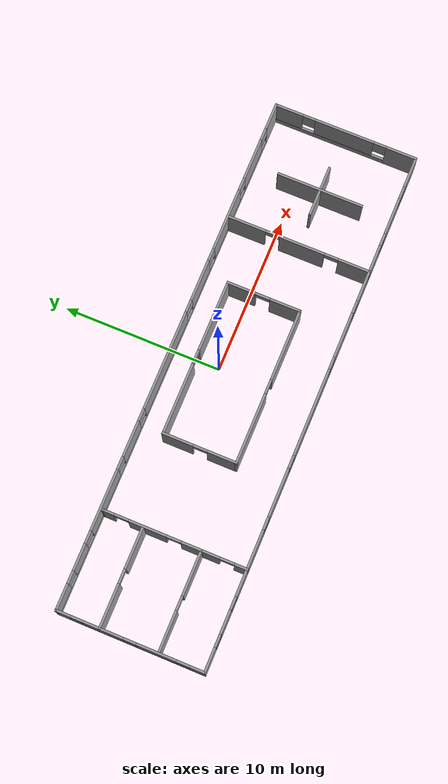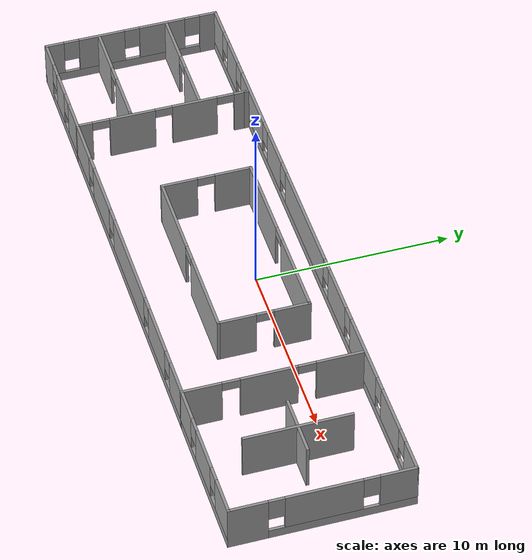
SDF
<?xml version='1.0'?>
<sdf version='1.6'>
  <model name='TakeTwo'>
    <pose frame=''>-0.429851 -1.63725 0 0 -0 0</pose>
    <link name='Wall_1'>
      <pose frame=''>1e-06 -4.55 0 0 -0 0</pose>
      <visual name='Wall_1_Visual_0'>
        <pose frame=''>-15.8307 0 1.25 0 -0 0</pose>
        <geometry>
          <box>
            <size>1.58863 0.15 2.5</size>
          </box>
        </geometry>
        <material>
          <script>
            <uri>file://media/materials/scripts/gazebo.material</uri>
            <name>Gazebo/Grey</name>
          </script>
          <ambient>1 1 1 1</ambient>
        </material>
        <meta>
          <layer>0</layer>
        </meta>
      </visual>
      <collision name='Wall_1_Collision_0'>
        <geometry>
          <box>
            <size>1.58863 0.15 2.5</size>
          </box>
        </geometry>
        <pose frame=''>-15.8307 0 1.25 0 -0 0</pose>
      </collision>
      <visual name='Wall_1_Visual_1'>
        <pose frame=''>0.794313 0 0.25 0 -0 0</pose>
        <geometry>
          <box>
            <size>31.6614 0.15 0.5</size>
          </box>
        </geometry>
        <material>
          <script>
            <uri>file://media/materials/scripts/gazebo.material</uri>
            <name>Gazebo/Grey</name>
          </script>
          <ambient>1 1 1 1</ambient>
        </material>
        <meta>
          <layer>0</layer>
        </meta>
      </visual>
      <collision name='Wall_1_Collision_1'>
        <geometry>
          <box>
            <size>31.6614 0.15 0.5</size>
          </box>
        </geometry>
        <pose frame=''>0.794313 0 0.25 0 -0 0</pose>
      </collision>
      <visual name='Wall_1_Visual_2'>
        <pose frame=''>-13.4926 0 1.5 0 -0 0</pose>
        <geometry>
          <box>
            <size>1.48762 0.15 2</size>
          </box>
        </geometry>
        <material>
          <script>
            <uri>file://media/materials/scripts/gazebo.material</uri>
            <name>Gazebo/Grey</name>
          </script>
          <ambient>1 1 1 1</ambient>
        </material>
        <meta>
          <layer>0</layer>
        </meta>
      </visual>
      <collision name='Wall_1_Collision_2'>
        <geometry>
          <box>
            <size>1.48762 0.15 2</size>
          </box>
        </geometry>
        <pose frame=''>-13.4926 0 1.5 0 -0 0</pose>
      </collision>
      <visual name='Wall_1_Visual_3'>
        <pose frame=''>-9.88824 0 1.5 0 -0 0</pose>
        <geometry>
          <box>
            <size>4.12104 0.15 2</size>
          </box>
        </geometry>
        <material>
          <script>
            <uri>file://media/materials/scripts/gazebo.material</uri>
            <name>Gazebo/Grey</name>
          </script>
          <ambient>1 1 1 1</ambient>
        </material>
        <meta>
          <layer>0</layer>
        </meta>
      </visual>
      <collision name='Wall_1_Collision_3'>
        <geometry>
          <box>
            <size>4.12104 0.15 2</size>
          </box>
        </geometry>
        <pose frame=''>-9.88824 0 1.5 0 -0 0</pose>
      </collision>
      <visual name='Wall_1_Visual_4'>
        <pose frame=''>-5.4992 0 1.5 0 -0 0</pose>
        <geometry>
          <box>
            <size>3.05703 0.15 2</size>
          </box>
        </geometry>
        <material>
          <script>
            <uri>file://media/materials/scripts/gazebo.material</uri>
            <name>Gazebo/Grey</name>
          </script>
          <ambient>1 1 1 1</ambient>
        </material>
        <meta>
          <layer>0</layer>
        </meta>
      </visual>
      <collision name='Wall_1_Collision_4'>
        <geometry>
          <box>
            <size>3.05703 0.15 2</size>
          </box>
        </geometry>
        <pose frame=''>-5.4992 0 1.5 0 -0 0</pose>
      </collision>
      <visual name='Wall_1_Visual_5'>
        <pose frame=''>-0.391967 0 1.5 0 -0 0</pose>
        <geometry>
          <box>
            <size>5.55745 0.15 2</size>
          </box>
        </geometry>
        <material>
          <script>
            <uri>file://media/materials/scripts/gazebo.material</uri>
            <name>Gazebo/Grey</name>
          </script>
          <ambient>1 1 1 1</ambient>
        </material>
        <meta>
          <layer>0</layer>
        </meta>
      </visual>
      <collision name='Wall_1_Collision_5'>
        <geometry>
          <box>
            <size>5.55745 0.15 2</size>
          </box>
        </geometry>
        <pose frame=''>-0.391967 0 1.5 0 -0 0</pose>
      </collision>
      <visual name='Wall_1_Visual_6'>
        <pose frame=''>4.63547 0 1.5 0 -0 0</pose>
        <geometry>
          <box>
            <size>2.89743 0.15 2</size>
          </box>
        </geometry>
        <material>
          <script>
            <uri>file://media/materials/scripts/gazebo.material</uri>
            <name>Gazebo/Grey</name>
          </script>
          <ambient>1 1 1 1</ambient>
        </material>
        <meta>
          <layer>0</layer>
        </meta>
      </visual>
      <collision name='Wall_1_Collision_6'>
        <geometry>
          <box>
            <size>2.89743 0.15 2</size>
          </box>
        </geometry>
        <pose frame=''>4.63547 0 1.5 0 -0 0</pose>
      </collision>
      <visual name='Wall_1_Visual_7'>
        <pose frame=''>8.7452 0 1.5 0 -0 0</pose>
        <geometry>
          <box>
            <size>3.72203 0.15 2</size>
          </box>
        </geometry>
        <material>
          <script>
            <uri>file://media/materials/scripts/gazebo.material</uri>
            <name>Gazebo/Grey</name>
          </script>
          <ambient>1 1 1 1</ambient>
        </material>
        <meta>
          <layer>0</layer>
        </meta>
      </visual>
      <collision name='Wall_1_Collision_7'>
        <geometry>
          <box>
            <size>3.72203 0.15 2</size>
          </box>
        </geometry>
        <pose frame=''>8.7452 0 1.5 0 -0 0</pose>
      </collision>
      <visual name='Wall_1_Visual_8'>
        <pose frame=''>12.6022 0 1.5 0 -0 0</pose>
        <geometry>
          <box>
            <size>2.39202 0.15 2</size>
          </box>
        </geometry>
        <material>
          <script>
            <uri>file://media/materials/scripts/gazebo.material</uri>
            <name>Gazebo/Grey</name>
          </script>
          <ambient>1 1 1 1</ambient>
        </material>
        <meta>
          <layer>0</layer>
        </meta>
      </visual>
      <collision name='Wall_1_Collision_8'>
        <geometry>
          <box>
            <size>2.39202 0.15 2</size>
          </box>
        </geometry>
        <pose frame=''>12.6022 0 1.5 0 -0 0</pose>
      </collision>
      <visual name='Wall_1_Visual_9'>
        <pose frame=''>15.6116 0 1.5 0 -0 0</pose>
        <geometry>
          <box>
            <size>2.02676 0.15 2</size>
          </box>
        </geometry>
        <material>
          <script>
            <uri>file://media/materials/scripts/gazebo.material</uri>
            <name>Gazebo/Grey</name>
          </script>
          <ambient>1 1 1 1</ambient>
        </material>
        <meta>
          <layer>0</layer>
        </meta>
      </visual>
      <collision name='Wall_1_Collision_9'>
        <geometry>
          <box>
            <size>2.02676 0.15 2</size>
          </box>
        </geometry>
        <pose frame=''>15.6116 0 1.5 0 -0 0</pose>
      </collision>
      <visual name='Wall_1_Visual_10'>
        <pose frame=''>-14.6364 0 1.9 0 -0 0</pose>
        <geometry>
          <box>
            <size>0.8 0.15 1.2</size>
          </box>
        </geometry>
        <material>
          <script>
            <uri>file://media/materials/scripts/gazebo.material</uri>
            <name>Gazebo/Grey</name>
          </script>
          <ambient>1 1 1 1</ambient>
        </material>
        <meta>
          <layer>0</layer>
        </meta>
      </visual>
      <collision name='Wall_1_Collision_10'>
        <geometry>
          <box>
            <size>0.8 0.15 1.2</size>
          </box>
        </geometry>
        <pose frame=''>-14.6364 0 1.9 0 -0 0</pose>
      </collision>
      <visual name='Wall_1_Visual_11'>
        <pose frame=''>-12.3488 0 1.9 0 -0 0</pose>
        <geometry>
          <box>
            <size>0.8 0.15 1.2</size>
          </box>
        </geometry>
        <material>
          <script>
            <uri>file://media/materials/scripts/gazebo.material</uri>
            <name>Gazebo/Grey</name>
          </script>
          <ambient>1 1 1 1</ambient>
        </material>
        <meta>
          <layer>0</layer>
        </meta>
      </visual>
      <collision name='Wall_1_Collision_11'>
        <geometry>
          <box>
            <size>0.8 0.15 1.2</size>
          </box>
        </geometry>
        <pose frame=''>-12.3488 0 1.9 0 -0 0</pose>
      </collision>
      <visual name='Wall_1_Visual_12'>
        <pose frame=''>-7.42772 0 1.9 0 -0 0</pose>
        <geometry>
          <box>
            <size>0.8 0.15 1.2</size>
          </box>
        </geometry>
        <material>
          <script>
            <uri>file://media/materials/scripts/gazebo.material</uri>
            <name>Gazebo/Grey</name>
          </script>
          <ambient>1 1 1 1</ambient>
        </material>
        <meta>
          <layer>0</layer>
        </meta>
      </visual>
      <collision name='Wall_1_Collision_12'>
        <geometry>
          <box>
            <size>0.8 0.15 1.2</size>
          </box>
        </geometry>
        <pose frame=''>-7.42772 0 1.9 0 -0 0</pose>
      </collision>
      <visual name='Wall_1_Visual_13'>
        <pose frame=''>-3.57069 0 1.9 0 -0 0</pose>
        <geometry>
          <box>
            <size>0.8 0.15 1.2</size>
          </box>
        </geometry>
        <material>
          <script>
            <uri>file://media/materials/scripts/gazebo.material</uri>
            <name>Gazebo/Grey</name>
          </script>
          <ambient>1 1 1 1</ambient>
        </material>
        <meta>
          <layer>0</layer>
        </meta>
      </visual>
      <collision name='Wall_1_Collision_13'>
        <geometry>
          <box>
            <size>0.8 0.15 1.2</size>
          </box>
        </geometry>
        <pose frame=''>-3.57069 0 1.9 0 -0 0</pose>
      </collision>
      <visual name='Wall_1_Visual_14'>
        <pose frame=''>2.78676 0 1.9 0 -0 0</pose>
        <geometry>
          <box>
            <size>0.8 0.15 1.2</size>
          </box>
        </geometry>
        <material>
          <script>
            <uri>file://media/materials/scripts/gazebo.material</uri>
            <name>Gazebo/Grey</name>
          </script>
          <ambient>1 1 1 1</ambient>
        </material>
        <meta>
          <layer>0</layer>
        </meta>
      </visual>
      <collision name='Wall_1_Collision_14'>
        <geometry>
          <box>
            <size>0.8 0.15 1.2</size>
          </box>
        </geometry>
        <pose frame=''>2.78676 0 1.9 0 -0 0</pose>
      </collision>
      <visual name='Wall_1_Visual_15'>
        <pose frame=''>6.48419 0 1.9 0 -0 0</pose>
        <geometry>
          <box>
            <size>0.8 0.15 1.2</size>
          </box>
        </geometry>
        <material>
          <script>
            <uri>file://media/materials/scripts/gazebo.material</uri>
            <name>Gazebo/Grey</name>
          </script>
          <ambient>1 1 1 1</ambient>
        </material>
        <meta>
          <layer>0</layer>
        </meta>
      </visual>
      <collision name='Wall_1_Collision_15'>
        <geometry>
          <box>
            <size>0.8 0.15 1.2</size>
          </box>
        </geometry>
        <pose frame=''>6.48419 0 1.9 0 -0 0</pose>
      </collision>
      <visual name='Wall_1_Visual_16'>
        <pose frame=''>11.0062 0 1.9 0 -0 0</pose>
        <geometry>
          <box>
            <size>0.8 0.15 1.2</size>
          </box>
        </geometry>
        <material>
          <script>
            <uri>file://media/materials/scripts/gazebo.material</uri>
            <name>Gazebo/Grey</name>
          </script>
          <ambient>1 1 1 1</ambient>
        </material>
        <meta>
          <layer>0</layer>
        </meta>
      </visual>
      <collision name='Wall_1_Collision_16'>
        <geometry>
          <box>
            <size>0.8 0.15 1.2</size>
          </box>
        </geometry>
        <pose frame=''>11.0062 0 1.9 0 -0 0</pose>
      </collision>
      <visual name='Wall_1_Visual_17'>
        <pose frame=''>14.1982 0 1.9 0 -0 0</pose>
        <geometry>
          <box>
            <size>0.8 0.15 1.2</size>
          </box>
        </geometry>
        <material>
          <script>
            <uri>file://media/materials/scripts/gazebo.material</uri>
            <name>Gazebo/Grey</name>
          </script>
          <ambient>1 1 1 1</ambient>
        </material>
        <meta>
          <layer>0</layer>
        </meta>
      </visual>
      <collision name='Wall_1_Collision_17'>
        <geometry>
          <box>
            <size>0.8 0.15 1.2</size>
          </box>
        </geometry>
        <pose frame=''>14.1982 0 1.9 0 -0 0</pose>
      </collision>
    </link>
    <link name='Wall_11'>
      <pose frame=''>-10.279 -0.125 0 0 -0 1.5708</pose>
      <visual name='Wall_11_Visual_0'>
        <pose frame=''>-4.07739 0 1.25 0 -0 0</pose>
        <geometry>
          <box>
            <size>0.845229 0.15 2.5</size>
          </box>
        </geometry>
        <material>
          <script>
            <uri>file://media/materials/scripts/gazebo.material</uri>
            <name>Gazebo/Grey</name>
          </script>
          <ambient>1 1 1 1</ambient>
        </material>
        <meta>
          <layer>0</layer>
        </meta>
      </visual>
      <collision name='Wall_11_Collision_0'>
        <geometry>
          <box>
            <size>0.845229 0.15 2.5</size>
          </box>
        </geometry>
        <pose frame=''>-4.07739 0 1.25 0 -0 0</pose>
      </collision>
      <visual name='Wall_11_Visual_1'>
        <pose frame=''>-1.55556 0 1.25 0 -0 0</pose>
        <geometry>
          <box>
            <size>2.39843 0.15 2.5</size>
          </box>
        </geometry>
        <material>
          <script>
            <uri>file://media/materials/scripts/gazebo.material</uri>
            <name>Gazebo/Grey</name>
          </script>
          <ambient>1 1 1 1</ambient>
        </material>
        <meta>
          <layer>0</layer>
        </meta>
      </visual>
      <collision name='Wall_11_Collision_1'>
        <geometry>
          <box>
            <size>2.39843 0.15 2.5</size>
          </box>
        </geometry>
        <pose frame=''>-1.55556 0 1.25 0 -0 0</pose>
      </collision>
      <visual name='Wall_11_Visual_2'>
        <pose frame=''>1.72957 0 1.25 0 -0 0</pose>
        <geometry>
          <box>
            <size>2.37182 0.15 2.5</size>
          </box>
        </geometry>
        <material>
          <script>
            <uri>file://media/materials/scripts/gazebo.material</uri>
            <name>Gazebo/Grey</name>
          </script>
          <ambient>1 1 1 1</ambient>
        </material>
        <meta>
          <layer>0</layer>
        </meta>
      </visual>
      <collision name='Wall_11_Collision_2'>
        <geometry>
          <box>
            <size>2.37182 0.15 2.5</size>
          </box>
        </geometry>
        <pose frame=''>1.72957 0 1.25 0 -0 0</pose>
      </collision>
      <visual name='Wall_11_Visual_3'>
        <pose frame=''>4.15774 0 1.25 0 -0 0</pose>
        <geometry>
          <box>
            <size>0.684522 0.15 2.5</size>
          </box>
        </geometry>
        <material>
          <script>
            <uri>file://media/materials/scripts/gazebo.material</uri>
            <name>Gazebo/Grey</name>
          </script>
          <ambient>1 1 1 1</ambient>
        </material>
        <meta>
          <layer>0</layer>
        </meta>
      </visual>
      <collision name='Wall_11_Collision_3'>
        <geometry>
          <box>
            <size>0.684522 0.15 2.5</size>
          </box>
        </geometry>
        <pose frame=''>4.15774 0 1.25 0 -0 0</pose>
      </collision>
      <visual name='Wall_11_Visual_4'>
        <pose frame=''>-3.20477 0 2.25 0 -0 0</pose>
        <geometry>
          <box>
            <size>0.9 0.15 0.5</size>
          </box>
        </geometry>
        <material>
          <script>
            <uri>file://media/materials/scripts/gazebo.material</uri>
            <name>Gazebo/Grey</name>
          </script>
          <ambient>1 1 1 1</ambient>
        </material>
        <meta>
          <layer>0</layer>
        </meta>
      </visual>
      <collision name='Wall_11_Collision_4'>
        <geometry>
          <box>
            <size>0.9 0.15 0.5</size>
          </box>
        </geometry>
        <pose frame=''>-3.20477 0 2.25 0 -0 0</pose>
      </collision>
      <visual name='Wall_11_Visual_5'>
        <pose frame=''>0.093653 0 2.25 0 -0 0</pose>
        <geometry>
          <box>
            <size>0.9 0.15 0.5</size>
          </box>
        </geometry>
        <material>
          <script>
            <uri>file://media/materials/scripts/gazebo.material</uri>
            <name>Gazebo/Grey</name>
          </script>
          <ambient>1 1 1 1</ambient>
        </material>
        <meta>
          <layer>0</layer>
        </meta>
      </visual>
      <collision name='Wall_11_Collision_5'>
        <geometry>
          <box>
            <size>0.9 0.15 0.5</size>
          </box>
        </geometry>
        <pose frame=''>0.093653 0 2.25 0 -0 0</pose>
      </collision>
      <visual name='Wall_11_Visual_6'>
        <pose frame=''>3.36548 0 2.25 0 -0 0</pose>
        <geometry>
          <box>
            <size>0.9 0.15 0.5</size>
          </box>
        </geometry>
        <material>
          <script>
            <uri>file://media/materials/scripts/gazebo.material</uri>
            <name>Gazebo/Grey</name>
          </script>
          <ambient>1 1 1 1</ambient>
        </material>
        <meta>
          <layer>0</layer>
        </meta>
      </visual>
      <collision name='Wall_11_Collision_6'>
        <geometry>
          <box>
            <size>0.9 0.15 0.5</size>
          </box>
        </geometry>
        <pose frame=''>3.36548 0 2.25 0 -0 0</pose>
      </collision>
    </link>
    <link name='Wall_12'>
      <collision name='Wall_12_Collision'>
        <geometry>
          <box>
            <size>0.25 0.15 2.5</size>
          </box>
        </geometry>
        <pose frame=''>0 0 1.25 0 -0 0</pose>
      </collision>
      <visual name='Wall_12_Visual'>
        <pose frame=''>0 0 1.25 0 -0 0</pose>
        <geometry>
          <box>
            <size>0.25 0.15 2.5</size>
          </box>
        </geometry>
        <material>
          <script>
            <uri>file://media/materials/scripts/gazebo.material</uri>
            <name>Gazebo/Grey</name>
          </script>
          <ambient>1 1 1 1</ambient>
        </material>
        <meta>
          <layer>0</layer>
        </meta>
      </visual>
      <pose frame=''>-10.279 4.35 0 0 -0 1.5708</pose>
    </link>
    <link name='Wall_14'>
      <pose frame=''>8.83989 0 0 0 -0 1.5708</pose>
      <visual name='Wall_14_Visual_0'>
        <pose frame=''>-3.60388 0 1.25 0 -0 0</pose>
        <geometry>
          <box>
            <size>2.04224 0.15 2.5</size>
          </box>
        </geometry>
        <material>
          <script>
            <uri>file://media/materials/scripts/gazebo.material</uri>
            <name>Gazebo/Grey</name>
          </script>
          <ambient>1 1 1 1</ambient>
        </material>
        <meta>
          <layer>0</layer>
        </meta>
      </visual>
      <collision name='Wall_14_Collision_0'>
        <geometry>
          <box>
            <size>2.04224 0.15 2.5</size>
          </box>
        </geometry>
        <pose frame=''>-3.60388 0 1.25 0 -0 0</pose>
      </collision>
      <visual name='Wall_14_Visual_1'>
        <pose frame=''>-0.244148 0 1.25 0 -0 0</pose>
        <geometry>
          <box>
            <size>2.87723 0.15 2.5</size>
          </box>
        </geometry>
        <material>
          <script>
            <uri>file://media/materials/scripts/gazebo.material</uri>
            <name>Gazebo/Grey</name>
          </script>
          <ambient>1 1 1 1</ambient>
        </material>
        <meta>
          <layer>0</layer>
        </meta>
      </visual>
      <collision name='Wall_14_Collision_1'>
        <geometry>
          <box>
            <size>2.87723 0.15 2.5</size>
          </box>
        </geometry>
        <pose frame=''>-0.244148 0 1.25 0 -0 0</pose>
      </collision>
      <visual name='Wall_14_Visual_2'>
        <pose frame=''>3.35973 0 1.25 0 -0 0</pose>
        <geometry>
          <box>
            <size>2.53053 0.15 2.5</size>
          </box>
        </geometry>
        <material>
          <script>
            <uri>file://media/materials/scripts/gazebo.material</uri>
            <name>Gazebo/Grey</name>
          </script>
          <ambient>1 1 1 1</ambient>
        </material>
        <meta>
          <layer>0</layer>
        </meta>
      </visual>
      <collision name='Wall_14_Collision_2'>
        <geometry>
          <box>
            <size>2.53053 0.15 2.5</size>
          </box>
        </geometry>
        <pose frame=''>3.35973 0 1.25 0 -0 0</pose>
      </collision>
      <visual name='Wall_14_Visual_3'>
        <pose frame=''>-2.13276 0 2.25 0 -0 0</pose>
        <geometry>
          <box>
            <size>0.9 0.15 0.5</size>
          </box>
        </geometry>
        <material>
          <script>
            <uri>file://media/materials/scripts/gazebo.material</uri>
            <name>Gazebo/Grey</name>
          </script>
          <ambient>1 1 1 1</ambient>
        </material>
        <meta>
          <layer>0</layer>
        </meta>
      </visual>
      <collision name='Wall_14_Collision_3'>
        <geometry>
          <box>
            <size>0.9 0.15 0.5</size>
          </box>
        </geometry>
        <pose frame=''>-2.13276 0 2.25 0 -0 0</pose>
      </collision>
      <visual name='Wall_14_Visual_4'>
        <pose frame=''>1.64447 0 2.25 0 -0 0</pose>
        <geometry>
          <box>
            <size>0.9 0.15 0.5</size>
          </box>
        </geometry>
        <material>
          <script>
            <uri>file://media/materials/scripts/gazebo.material</uri>
            <name>Gazebo/Grey</name>
          </script>
          <ambient>1 1 1 1</ambient>
        </material>
        <meta>
          <layer>0</layer>
        </meta>
      </visual>
      <collision name='Wall_14_Collision_4'>
        <geometry>
          <box>
            <size>0.9 0.15 0.5</size>
          </box>
        </geometry>
        <pose frame=''>1.64447 0 2.25 0 -0 0</pose>
      </collision>
    </link>
    <link name='Wall_16'>
      <pose frame=''>-13.4694 1.87395 0 0 -0 0</pose>
      <visual name='Wall_16_Visual_0'>
        <pose frame=''>-1.73258 0 1.25 0 -0 0</pose>
        <geometry>
          <box>
            <size>2.78485 0.15 2.5</size>
          </box>
        </geometry>
        <material>
          <script>
            <uri>file://media/materials/scripts/gazebo.material</uri>
            <name>Gazebo/Grey</name>
          </script>
          <ambient>1 1 1 1</ambient>
        </material>
        <meta>
          <layer>0</layer>
        </meta>
      </visual>
      <collision name='Wall_16_Collision_0'>
        <geometry>
          <box>
            <size>2.78485 0.15 2.5</size>
          </box>
        </geometry>
        <pose frame=''>-1.73258 0 1.25 0 -0 0</pose>
      </collision>
      <visual name='Wall_16_Visual_1'>
        <pose frame=''>1.84242 0 1.25 0 -0 0</pose>
        <geometry>
          <box>
            <size>2.56515 0.15 2.5</size>
          </box>
        </geometry>
        <material>
          <script>
            <uri>file://media/materials/scripts/gazebo.material</uri>
            <name>Gazebo/Grey</name>
          </script>
          <ambient>1 1 1 1</ambient>
        </material>
        <meta>
          <layer>0</layer>
        </meta>
      </visual>
      <collision name='Wall_16_Collision_1'>
        <geometry>
          <box>
            <size>2.56515 0.15 2.5</size>
          </box>
        </geometry>
        <pose frame=''>1.84242 0 1.25 0 -0 0</pose>
      </collision>
      <visual name='Wall_16_Visual_2'>
        <pose frame=''>0.109846 0 2.25 0 -0 0</pose>
        <geometry>
          <box>
            <size>0.9 0.15 0.5</size>
          </box>
        </geometry>
        <material>
          <script>
            <uri>file://media/materials/scripts/gazebo.material</uri>
            <name>Gazebo/Grey</name>
          </script>
          <ambient>1 1 1 1</ambient>
        </material>
        <meta>
          <layer>0</layer>
        </meta>
      </visual>
      <collision name='Wall_16_Collision_2'>
        <geometry>
          <box>
            <size>0.9 0.15 0.5</size>
          </box>
        </geometry>
        <pose frame=''>0.109846 0 2.25 0 -0 0</pose>
      </collision>
    </link>
    <link name='Wall_18'>
      <pose frame=''>-13.5 -1.7357 0 0 -0 0</pose>
      <visual name='Wall_18_Visual_0'>
        <pose frame=''>-1.79708 0 1.25 0 -0 0</pose>
        <geometry>
          <box>
            <size>2.65584 0.15 2.5</size>
          </box>
        </geometry>
        <material>
          <script>
            <uri>file://media/materials/scripts/gazebo.material</uri>
            <name>Gazebo/Grey</name>
          </script>
          <ambient>1 1 1 1</ambient>
        </material>
        <meta>
          <layer>0</layer>
        </meta>
      </visual>
      <collision name='Wall_18_Collision_0'>
        <geometry>
          <box>
            <size>2.65584 0.15 2.5</size>
          </box>
        </geometry>
        <pose frame=''>-1.79708 0 1.25 0 -0 0</pose>
      </collision>
      <visual name='Wall_18_Visual_1'>
        <pose frame=''>1.77792 0 1.25 0 -0 0</pose>
        <geometry>
          <box>
            <size>2.69416 0.15 2.5</size>
          </box>
        </geometry>
        <material>
          <script>
            <uri>file://media/materials/scripts/gazebo.material</uri>
            <name>Gazebo/Grey</name>
          </script>
          <ambient>1 1 1 1</ambient>
        </material>
        <meta>
          <layer>0</layer>
        </meta>
      </visual>
      <collision name='Wall_18_Collision_1'>
        <geometry>
          <box>
            <size>2.69416 0.15 2.5</size>
          </box>
        </geometry>
        <pose frame=''>1.77792 0 1.25 0 -0 0</pose>
      </collision>
      <visual name='Wall_18_Visual_2'>
        <pose frame=''>-0.019165 0 2.25 0 -0 0</pose>
        <geometry>
          <box>
            <size>0.9 0.15 0.5</size>
          </box>
        </geometry>
        <material>
          <script>
            <uri>file://media/materials/scripts/gazebo.material</uri>
            <name>Gazebo/Grey</name>
          </script>
          <ambient>1 1 1 1</ambient>
        </material>
        <meta>
          <layer>0</layer>
        </meta>
      </visual>
      <collision name='Wall_18_Collision_2'>
        <geometry>
          <box>
            <size>0.9 0.15 0.5</size>
          </box>
        </geometry>
        <pose frame=''>-0.019165 0 2.25 0 -0 0</pose>
      </collision>
    </link>
    <link name='Wall_19'>
      <collision name='Wall_19_Collision'>
        <geometry>
          <box>
            <size>0.25 0.15 2.5</size>
          </box>
        </geometry>
        <pose frame=''>0 0 1.25 0 -0 0</pose>
      </collision>
      <visual name='Wall_19_Visual'>
        <pose frame=''>0 0 1.25 0 -0 0</pose>
        <geometry>
          <box>
            <size>0.25 0.15 2.5</size>
          </box>
        </geometry>
        <material>
          <script>
            <uri>file://media/materials/scripts/gazebo.material</uri>
            <name>Gazebo/Grey</name>
          </script>
          <ambient>1 1 1 1</ambient>
        </material>
        <meta>
          <layer>0</layer>
        </meta>
      </visual>
      <pose frame=''>-10.4 -1.7357 0 0 -0 0</pose>
    </link>
    <link name='Wall_2'>
      <pose frame=''>16.55 0 0 0 -0 1.5708</pose>
      <visual name='Wall_2_Visual_0'>
        <pose frame=''>-3.63208 0 1.25 0 -0 0</pose>
        <geometry>
          <box>
            <size>1.98584 0.15 2.5</size>
          </box>
        </geometry>
        <material>
          <script>
            <uri>file://media/materials/scripts/gazebo.material</uri>
            <name>Gazebo/Grey</name>
          </script>
          <ambient>1 1 1 1</ambient>
        </material>
        <meta>
          <layer>0</layer>
        </meta>
      </visual>
      <collision name='Wall_2_Collision_0'>
        <geometry>
          <box>
            <size>1.98584 0.15 2.5</size>
          </box>
        </geometry>
        <pose frame=''>-3.63208 0 1.25 0 -0 0</pose>
      </collision>
      <visual name='Wall_2_Visual_1'>
        <pose frame=''>0.992918 0 0.25 0 -0 0</pose>
        <geometry>
          <box>
            <size>7.26416 0.15 0.5</size>
          </box>
        </geometry>
        <material>
          <script>
            <uri>file://media/materials/scripts/gazebo.material</uri>
            <name>Gazebo/Grey</name>
          </script>
          <ambient>1 1 1 1</ambient>
        </material>
        <meta>
          <layer>0</layer>
        </meta>
      </visual>
      <collision name='Wall_2_Collision_1'>
        <geometry>
          <box>
            <size>7.26416 0.15 0.5</size>
          </box>
        </geometry>
        <pose frame=''>0.992918 0 0.25 0 -0 0</pose>
      </collision>
      <visual name='Wall_2_Visual_2'>
        <pose frame=''>0.061754 0 1.5 0 -0 0</pose>
        <geometry>
          <box>
            <size>3.80183 0.15 2</size>
          </box>
        </geometry>
        <material>
          <script>
            <uri>file://media/materials/scripts/gazebo.material</uri>
            <name>Gazebo/Grey</name>
          </script>
          <ambient>1 1 1 1</ambient>
        </material>
        <meta>
          <layer>0</layer>
        </meta>
      </visual>
      <collision name='Wall_2_Collision_2'>
        <geometry>
          <box>
            <size>3.80183 0.15 2</size>
          </box>
        </geometry>
        <pose frame=''>0.061754 0 1.5 0 -0 0</pose>
      </collision>
      <visual name='Wall_2_Visual_3'>
        <pose frame=''>3.69384 0 1.5 0 -0 0</pose>
        <geometry>
          <box>
            <size>1.86233 0.15 2</size>
          </box>
        </geometry>
        <material>
          <script>
            <uri>file://media/materials/scripts/gazebo.material</uri>
            <name>Gazebo/Grey</name>
          </script>
          <ambient>1 1 1 1</ambient>
        </material>
        <meta>
          <layer>0</layer>
        </meta>
      </visual>
      <collision name='Wall_2_Collision_3'>
        <geometry>
          <box>
            <size>1.86233 0.15 2</size>
          </box>
        </geometry>
        <pose frame=''>3.69384 0 1.5 0 -0 0</pose>
      </collision>
      <visual name='Wall_2_Visual_4'>
        <pose frame=''>-2.23916 0 1.9 0 -0 0</pose>
        <geometry>
          <box>
            <size>0.8 0.15 1.2</size>
          </box>
        </geometry>
        <material>
          <script>
            <uri>file://media/materials/scripts/gazebo.material</uri>
            <name>Gazebo/Grey</name>
          </script>
          <ambient>1 1 1 1</ambient>
        </material>
        <meta>
          <layer>0</layer>
        </meta>
      </visual>
      <collision name='Wall_2_Collision_4'>
        <geometry>
          <box>
            <size>0.8 0.15 1.2</size>
          </box>
        </geometry>
        <pose frame=''>-2.23916 0 1.9 0 -0 0</pose>
      </collision>
      <visual name='Wall_2_Visual_5'>
        <pose frame=''>2.36267 0 1.9 0 -0 0</pose>
        <geometry>
          <box>
            <size>0.8 0.15 1.2</size>
          </box>
        </geometry>
        <material>
          <script>
            <uri>file://media/materials/scripts/gazebo.material</uri>
            <name>Gazebo/Grey</name>
          </script>
          <ambient>1 1 1 1</ambient>
        </material>
        <meta>
          <layer>0</layer>
        </meta>
      </visual>
      <collision name='Wall_2_Collision_5'>
        <geometry>
          <box>
            <size>0.8 0.15 1.2</size>
          </box>
        </geometry>
        <pose frame=''>2.36267 0 1.9 0 -0 0</pose>
      </collision>
    </link>
    <link name='Wall_21'>
      <collision name='Wall_21_Collision'>
        <geometry>
          <box>
            <size>5.5 0.15 2.5</size>
          </box>
        </geometry>
        <pose frame=''>0 0 1.25 0 -0 0</pose>
      </collision>
      <visual name='Wall_21_Visual'>
        <pose frame=''>0 0 1.25 0 -0 0</pose>
        <geometry>
          <box>
            <size>5.5 0.15 2.5</size>
          </box>
        </geometry>
        <material>
          <script>
            <uri>file://media/materials/scripts/gazebo.material</uri>
            <name>Gazebo/Grey</name>
          </script>
          <ambient>1 1 1 1</ambient>
        </material>
        <meta>
          <layer>0</layer>
        </meta>
      </visual>
      <pose frame=''>12.4958 0.060074 0 0 0 -1.5708</pose>
    </link>
    <link name='Wall_23'>
      <collision name='Wall_23_Collision'>
        <geometry>
          <box>
            <size>3.25 0.15 2.5</size>
          </box>
        </geometry>
        <pose frame=''>0 0 1.25 0 -0 0</pose>
      </collision>
      <visual name='Wall_23_Visual'>
        <pose frame=''>0 0 1.25 0 -0 0</pose>
        <geometry>
          <box>
            <size>3.25 0.15 2.5</size>
          </box>
        </geometry>
        <material>
          <script>
            <uri>file://media/materials/scripts/gazebo.material</uri>
            <name>Gazebo/Grey</name>
          </script>
          <ambient>1 1 1 1</ambient>
        </material>
        <meta>
          <layer>0</layer>
        </meta>
      </visual>
      <pose frame=''>12.4232 0.048454 0 0 -0 0</pose>
    </link>
    <link name='Wall_3'>
      <pose frame=''>1e-06 4.55 0 0 -0 3.14159</pose>
      <visual name='Wall_3_Visual_0'>
        <pose frame=''>-15.7579 0 1.25 0 -0 0</pose>
        <geometry>
          <box>
            <size>1.73416 0.15 2.5</size>
          </box>
        </geometry>
        <material>
          <script>
            <uri>file://media/materials/scripts/gazebo.material</uri>
            <name>Gazebo/Grey</name>
          </script>
          <ambient>1 1 1 1</ambient>
        </material>
        <meta>
          <layer>0</layer>
        </meta>
      </visual>
      <collision name='Wall_3_Collision_0'>
        <geometry>
          <box>
            <size>1.73416 0.15 2.5</size>
          </box>
        </geometry>
        <pose frame=''>-15.7579 0 1.25 0 -0 0</pose>
      </collision>
      <visual name='Wall_3_Visual_1'>
        <pose frame=''>0.867078 0 0.25 0 -0 0</pose>
        <geometry>
          <box>
            <size>31.5158 0.15 0.5</size>
          </box>
        </geometry>
        <material>
          <script>
            <uri>file://media/materials/scripts/gazebo.material</uri>
            <name>Gazebo/Grey</name>
          </script>
          <ambient>1 1 1 1</ambient>
        </material>
        <meta>
          <layer>0</layer>
        </meta>
      </visual>
      <collision name='Wall_3_Collision_1'>
        <geometry>
          <box>
            <size>31.5158 0.15 0.5</size>
          </box>
        </geometry>
        <pose frame=''>0.867078 0 0.25 0 -0 0</pose>
      </collision>
      <visual name='Wall_3_Visual_2'>
        <pose frame=''>-12.7618 0 1.5 0 -0 0</pose>
        <geometry>
          <box>
            <size>2.65803 0.15 2</size>
          </box>
        </geometry>
        <material>
          <script>
            <uri>file://media/materials/scripts/gazebo.material</uri>
            <name>Gazebo/Grey</name>
          </script>
          <ambient>1 1 1 1</ambient>
        </material>
        <meta>
          <layer>0</layer>
        </meta>
      </visual>
      <collision name='Wall_3_Collision_2'>
        <geometry>
          <box>
            <size>2.65803 0.15 2</size>
          </box>
        </geometry>
        <pose frame=''>-12.7618 0 1.5 0 -0 0</pose>
      </collision>
      <visual name='Wall_3_Visual_3'>
        <pose frame=''>-8.6388 0 1.5 0 -0 0</pose>
        <geometry>
          <box>
            <size>3.98803 0.15 2</size>
          </box>
        </geometry>
        <material>
          <script>
            <uri>file://media/materials/scripts/gazebo.material</uri>
            <name>Gazebo/Grey</name>
          </script>
          <ambient>1 1 1 1</ambient>
        </material>
        <meta>
          <layer>0</layer>
        </meta>
      </visual>
      <collision name='Wall_3_Collision_3'>
        <geometry>
          <box>
            <size>3.98803 0.15 2</size>
          </box>
        </geometry>
        <pose frame=''>-8.6388 0 1.5 0 -0 0</pose>
      </collision>
      <visual name='Wall_3_Visual_4'>
        <pose frame=''>-4.51577 0 1.5 0 -0 0</pose>
        <geometry>
          <box>
            <size>2.65803 0.15 2</size>
          </box>
        </geometry>
        <material>
          <script>
            <uri>file://media/materials/scripts/gazebo.material</uri>
            <name>Gazebo/Grey</name>
          </script>
          <ambient>1 1 1 1</ambient>
        </material>
        <meta>
          <layer>0</layer>
        </meta>
      </visual>
      <collision name='Wall_3_Collision_4'>
        <geometry>
          <box>
            <size>2.65803 0.15 2</size>
          </box>
        </geometry>
        <pose frame=''>-4.51577 0 1.5 0 -0 0</pose>
      </collision>
      <visual name='Wall_3_Visual_5'>
        <pose frame=''>0.76437 0 1.5 0 -0 0</pose>
        <geometry>
          <box>
            <size>6.30225 0.15 2</size>
          </box>
        </geometry>
        <material>
          <script>
            <uri>file://media/materials/scripts/gazebo.material</uri>
            <name>Gazebo/Grey</name>
          </script>
          <ambient>1 1 1 1</ambient>
        </material>
        <meta>
          <layer>0</layer>
        </meta>
      </visual>
      <collision name='Wall_3_Collision_5'>
        <geometry>
          <box>
            <size>6.30225 0.15 2</size>
          </box>
        </geometry>
        <pose frame=''>0.76437 0 1.5 0 -0 0</pose>
      </collision>
      <visual name='Wall_3_Visual_6'>
        <pose frame=''>5.85831 0 1.5 0 -0 0</pose>
        <geometry>
          <box>
            <size>2.28562 0.15 2</size>
          </box>
        </geometry>
        <material>
          <script>
            <uri>file://media/materials/scripts/gazebo.material</uri>
            <name>Gazebo/Grey</name>
          </script>
          <ambient>1 1 1 1</ambient>
        </material>
        <meta>
          <layer>0</layer>
        </meta>
      </visual>
      <collision name='Wall_3_Collision_6'>
        <geometry>
          <box>
            <size>2.28562 0.15 2</size>
          </box>
        </geometry>
        <pose frame=''>5.85831 0 1.5 0 -0 0</pose>
      </collision>
      <visual name='Wall_3_Visual_7'>
        <pose frame=''>9.72864 0 1.5 0 -0 0</pose>
        <geometry>
          <box>
            <size>3.85503 0.15 2</size>
          </box>
        </geometry>
        <material>
          <script>
            <uri>file://media/materials/scripts/gazebo.material</uri>
            <name>Gazebo/Grey</name>
          </script>
          <ambient>1 1 1 1</ambient>
        </material>
        <meta>
          <layer>0</layer>
        </meta>
      </visual>
      <collision name='Wall_3_Collision_7'>
        <geometry>
          <box>
            <size>3.85503 0.15 2</size>
          </box>
        </geometry>
        <pose frame=''>9.72864 0 1.5 0 -0 0</pose>
      </collision>
      <visual name='Wall_3_Visual_8'>
        <pose frame=''>13.2931 0 1.5 0 -0 0</pose>
        <geometry>
          <box>
            <size>1.67382 0.15 2</size>
          </box>
        </geometry>
        <material>
          <script>
            <uri>file://media/materials/scripts/gazebo.material</uri>
            <name>Gazebo/Grey</name>
          </script>
          <ambient>1 1 1 1</ambient>
        </material>
        <meta>
          <layer>0</layer>
        </meta>
      </visual>
      <collision name='Wall_3_Collision_8'>
        <geometry>
          <box>
            <size>1.67382 0.15 2</size>
          </box>
        </geometry>
        <pose frame=''>13.2931 0 1.5 0 -0 0</pose>
      </collision>
      <visual name='Wall_3_Visual_9'>
        <pose frame=''>15.7775 0 1.5 0 -0 0</pose>
        <geometry>
          <box>
            <size>1.69503 0.15 2</size>
          </box>
        </geometry>
        <material>
          <script>
            <uri>file://media/materials/scripts/gazebo.material</uri>
            <name>Gazebo/Grey</name>
          </script>
          <ambient>1 1 1 1</ambient>
        </material>
        <meta>
          <layer>0</layer>
        </meta>
      </visual>
      <collision name='Wall_3_Collision_9'>
        <geometry>
          <box>
            <size>1.69503 0.15 2</size>
          </box>
        </geometry>
        <pose frame=''>15.7775 0 1.5 0 -0 0</pose>
      </collision>
      <visual name='Wall_3_Visual_10'>
        <pose frame=''>-14.4908 0 1.9 0 -0 0</pose>
        <geometry>
          <box>
            <size>0.8 0.15 1.2</size>
          </box>
        </geometry>
        <material>
          <script>
            <uri>file://media/materials/scripts/gazebo.material</uri>
            <name>Gazebo/Grey</name>
          </script>
          <ambient>1 1 1 1</ambient>
        </material>
        <meta>
          <layer>0</layer>
        </meta>
      </visual>
      <collision name='Wall_3_Collision_10'>
        <geometry>
          <box>
            <size>0.8 0.15 1.2</size>
          </box>
        </geometry>
        <pose frame=''>-14.4908 0 1.9 0 -0 0</pose>
      </collision>
      <visual name='Wall_3_Visual_11'>
        <pose frame=''>-11.0328 0 1.9 0 -0 0</pose>
        <geometry>
          <box>
            <size>0.8 0.15 1.2</size>
          </box>
        </geometry>
        <material>
          <script>
            <uri>file://media/materials/scripts/gazebo.material</uri>
            <name>Gazebo/Grey</name>
          </script>
          <ambient>1 1 1 1</ambient>
        </material>
        <meta>
          <layer>0</layer>
        </meta>
      </visual>
      <collision name='Wall_3_Collision_11'>
        <geometry>
          <box>
            <size>0.8 0.15 1.2</size>
          </box>
        </geometry>
        <pose frame=''>-11.0328 0 1.9 0 -0 0</pose>
      </collision>
      <visual name='Wall_3_Visual_12'>
        <pose frame=''>-6.24478 0 1.9 0 -0 0</pose>
        <geometry>
          <box>
            <size>0.8 0.15 1.2</size>
          </box>
        </geometry>
        <material>
          <script>
            <uri>file://media/materials/scripts/gazebo.material</uri>
            <name>Gazebo/Grey</name>
          </script>
          <ambient>1 1 1 1</ambient>
        </material>
        <meta>
          <layer>0</layer>
        </meta>
      </visual>
      <collision name='Wall_3_Collision_12'>
        <geometry>
          <box>
            <size>0.8 0.15 1.2</size>
          </box>
        </geometry>
        <pose frame=''>-6.24478 0 1.9 0 -0 0</pose>
      </collision>
      <visual name='Wall_3_Visual_13'>
        <pose frame=''>-2.78676 0 1.9 0 -0 0</pose>
        <geometry>
          <box>
            <size>0.8 0.15 1.2</size>
          </box>
        </geometry>
        <material>
          <script>
            <uri>file://media/materials/scripts/gazebo.material</uri>
            <name>Gazebo/Grey</name>
          </script>
          <ambient>1 1 1 1</ambient>
        </material>
        <meta>
          <layer>0</layer>
        </meta>
      </visual>
      <collision name='Wall_3_Collision_13'>
        <geometry>
          <box>
            <size>0.8 0.15 1.2</size>
          </box>
        </geometry>
        <pose frame=''>-2.78676 0 1.9 0 -0 0</pose>
      </collision>
      <visual name='Wall_3_Visual_14'>
        <pose frame=''>4.3155 0 1.9 0 -0 0</pose>
        <geometry>
          <box>
            <size>0.8 0.15 1.2</size>
          </box>
        </geometry>
        <material>
          <script>
            <uri>file://media/materials/scripts/gazebo.material</uri>
            <name>Gazebo/Grey</name>
          </script>
          <ambient>1 1 1 1</ambient>
        </material>
        <meta>
          <layer>0</layer>
        </meta>
      </visual>
      <collision name='Wall_3_Collision_14'>
        <geometry>
          <box>
            <size>0.8 0.15 1.2</size>
          </box>
        </geometry>
        <pose frame=''>4.3155 0 1.9 0 -0 0</pose>
      </collision>
      <visual name='Wall_3_Visual_15'>
        <pose frame=''>7.40112 0 1.9 0 -0 0</pose>
        <geometry>
          <box>
            <size>0.8 0.15 1.2</size>
          </box>
        </geometry>
        <material>
          <script>
            <uri>file://media/materials/scripts/gazebo.material</uri>
            <name>Gazebo/Grey</name>
          </script>
          <ambient>1 1 1 1</ambient>
        </material>
        <meta>
          <layer>0</layer>
        </meta>
      </visual>
      <collision name='Wall_3_Collision_15'>
        <geometry>
          <box>
            <size>0.8 0.15 1.2</size>
          </box>
        </geometry>
        <pose frame=''>7.40112 0 1.9 0 -0 0</pose>
      </collision>
      <visual name='Wall_3_Visual_16'>
        <pose frame=''>12.0562 0 1.9 0 -0 0</pose>
        <geometry>
          <box>
            <size>0.8 0.15 1.2</size>
          </box>
        </geometry>
        <material>
          <script>
            <uri>file://media/materials/scripts/gazebo.material</uri>
            <name>Gazebo/Grey</name>
          </script>
          <ambient>1 1 1 1</ambient>
        </material>
        <meta>
          <layer>0</layer>
        </meta>
      </visual>
      <collision name='Wall_3_Collision_16'>
        <geometry>
          <box>
            <size>0.8 0.15 1.2</size>
          </box>
        </geometry>
        <pose frame=''>12.0562 0 1.9 0 -0 0</pose>
      </collision>
      <visual name='Wall_3_Visual_17'>
        <pose frame=''>14.53 0 1.9 0 -0 0</pose>
        <geometry>
          <box>
            <size>0.8 0.15 1.2</size>
          </box>
        </geometry>
        <material>
          <script>
            <uri>file://media/materials/scripts/gazebo.material</uri>
            <name>Gazebo/Grey</name>
          </script>
          <ambient>1 1 1 1</ambient>
        </material>
        <meta>
          <layer>0</layer>
        </meta>
      </visual>
      <collision name='Wall_3_Collision_17'>
        <geometry>
          <box>
            <size>0.8 0.15 1.2</size>
          </box>
        </geometry>
        <pose frame=''>14.53 0 1.9 0 -0 0</pose>
      </collision>
    </link>
    <link name='Wall_4'>
      <pose frame=''>-16.55 0 0 0 0 -1.5708</pose>
      <visual name='Wall_4_Visual_0'>
        <pose frame=''>-4.14604 0 1.25 0 -0 0</pose>
        <geometry>
          <box>
            <size>0.957922 0.15 2.5</size>
          </box>
        </geometry>
        <material>
          <script>
            <uri>file://media/materials/scripts/gazebo.material</uri>
            <name>Gazebo/Grey</name>
          </script>
          <ambient>1 1 1 1</ambient>
        </material>
        <meta>
          <layer>0</layer>
        </meta>
      </visual>
      <collision name='Wall_4_Collision_0'>
        <geometry>
          <box>
            <size>0.957922 0.15 2.5</size>
          </box>
        </geometry>
        <pose frame=''>-4.14604 0 1.25 0 -0 0</pose>
      </collision>
      <visual name='Wall_4_Visual_1'>
        <pose frame=''>0.478961 0 0.25 0 -0 0</pose>
        <geometry>
          <box>
            <size>8.29208 0.15 0.5</size>
          </box>
        </geometry>
        <material>
          <script>
            <uri>file://media/materials/scripts/gazebo.material</uri>
            <name>Gazebo/Grey</name>
          </script>
          <ambient>1 1 1 1</ambient>
        </material>
        <meta>
          <layer>0</layer>
        </meta>
      </visual>
      <collision name='Wall_4_Collision_1'>
        <geometry>
          <box>
            <size>8.29208 0.15 0.5</size>
          </box>
        </geometry>
        <pose frame=''>0.478961 0 0.25 0 -0 0</pose>
      </collision>
      <visual name='Wall_4_Visual_2'>
        <pose frame=''>-1.64447 0 1.5 0 -0 0</pose>
        <geometry>
          <box>
            <size>2.44522 0.15 2</size>
          </box>
        </geometry>
        <material>
          <script>
            <uri>file://media/materials/scripts/gazebo.material</uri>
            <name>Gazebo/Grey</name>
          </script>
          <ambient>1 1 1 1</ambient>
        </material>
        <meta>
          <layer>0</layer>
        </meta>
      </visual>
      <collision name='Wall_4_Collision_2'>
        <geometry>
          <box>
            <size>2.44522 0.15 2</size>
          </box>
        </geometry>
        <pose frame=''>-1.64447 0 1.5 0 -0 0</pose>
      </collision>
      <visual name='Wall_4_Visual_3'>
        <pose frame=''>1.60076 0 1.5 0 -0 0</pose>
        <geometry>
          <box>
            <size>2.44522 0.15 2</size>
          </box>
        </geometry>
        <material>
          <script>
            <uri>file://media/materials/scripts/gazebo.material</uri>
            <name>Gazebo/Grey</name>
          </script>
          <ambient>1 1 1 1</ambient>
        </material>
        <meta>
          <layer>0</layer>
        </meta>
      </visual>
      <collision name='Wall_4_Collision_3'>
        <geometry>
          <box>
            <size>2.44522 0.15 2</size>
          </box>
        </geometry>
        <pose frame=''>1.60076 0 1.5 0 -0 0</pose>
      </collision>
      <visual name='Wall_4_Visual_4'>
        <pose frame=''>4.12418 0 1.5 0 -0 0</pose>
        <geometry>
          <box>
            <size>1.00163 0.15 2</size>
          </box>
        </geometry>
        <material>
          <script>
            <uri>file://media/materials/scripts/gazebo.material</uri>
            <name>Gazebo/Grey</name>
          </script>
          <ambient>1 1 1 1</ambient>
        </material>
        <meta>
          <layer>0</layer>
        </meta>
      </visual>
      <collision name='Wall_4_Collision_4'>
        <geometry>
          <box>
            <size>1.00163 0.15 2</size>
          </box>
        </geometry>
        <pose frame=''>4.12418 0 1.5 0 -0 0</pose>
      </collision>
      <visual name='Wall_4_Visual_5'>
        <pose frame=''>-3.26708 0 1.9 0 -0 0</pose>
        <geometry>
          <box>
            <size>0.8 0.15 1.2</size>
          </box>
        </geometry>
        <material>
          <script>
            <uri>file://media/materials/scripts/gazebo.material</uri>
            <name>Gazebo/Grey</name>
          </script>
          <ambient>1 1 1 1</ambient>
        </material>
        <meta>
          <layer>0</layer>
        </meta>
      </visual>
      <collision name='Wall_4_Collision_5'>
        <geometry>
          <box>
            <size>0.8 0.15 1.2</size>
          </box>
        </geometry>
        <pose frame=''>-3.26708 0 1.9 0 -0 0</pose>
      </collision>
      <visual name='Wall_4_Visual_6'>
        <pose frame=''>-0.021854 0 1.9 0 -0 0</pose>
        <geometry>
          <box>
            <size>0.8 0.15 1.2</size>
          </box>
        </geometry>
        <material>
          <script>
            <uri>file://media/materials/scripts/gazebo.material</uri>
            <name>Gazebo/Grey</name>
          </script>
          <ambient>1 1 1 1</ambient>
        </material>
        <meta>
          <layer>0</layer>
        </meta>
      </visual>
      <collision name='Wall_4_Collision_6'>
        <geometry>
          <box>
            <size>0.8 0.15 1.2</size>
          </box>
        </geometry>
        <pose frame=''>-0.021854 0 1.9 0 -0 0</pose>
      </collision>
      <visual name='Wall_4_Visual_7'>
        <pose frame=''>3.22337 0 1.9 0 -0 0</pose>
        <geometry>
          <box>
            <size>0.8 0.15 1.2</size>
          </box>
        </geometry>
        <material>
          <script>
            <uri>file://media/materials/scripts/gazebo.material</uri>
            <name>Gazebo/Grey</name>
          </script>
          <ambient>1 1 1 1</ambient>
        </material>
        <meta>
          <layer>0</layer>
        </meta>
      </visual>
      <collision name='Wall_4_Collision_7'>
        <geometry>
          <box>
            <size>0.8 0.15 1.2</size>
          </box>
        </geometry>
        <pose frame=''>3.22337 0 1.9 0 -0 0</pose>
      </collision>
    </link>
    <link name='Wall_6'>
      <pose frame=''>-4.83394 0.656072 0 0 -0 1.5708</pose>
      <visual name='Wall_6_Visual_0'>
        <pose frame=''>-1.43066 0 1.25 0 -0 0</pose>
        <geometry>
          <box>
            <size>1.88868 0.15 2.5</size>
          </box>
        </geometry>
        <material>
          <script>
            <uri>file://media/materials/scripts/gazebo.material</uri>
            <name>Gazebo/Grey</name>
          </script>
          <ambient>1 1 1 1</ambient>
        </material>
        <meta>
          <layer>0</layer>
        </meta>
      </visual>
      <collision name='Wall_6_Collision_0'>
        <geometry>
          <box>
            <size>1.88868 0.15 2.5</size>
          </box>
        </geometry>
        <pose frame=''>-1.43066 0 1.25 0 -0 0</pose>
      </collision>
      <visual name='Wall_6_Visual_1'>
        <pose frame=''>1.39434 0 1.25 0 -0 0</pose>
        <geometry>
          <box>
            <size>1.96132 0.15 2.5</size>
          </box>
        </geometry>
        <material>
          <script>
            <uri>file://media/materials/scripts/gazebo.material</uri>
            <name>Gazebo/Grey</name>
          </script>
          <ambient>1 1 1 1</ambient>
        </material>
        <meta>
          <layer>0</layer>
        </meta>
      </visual>
      <collision name='Wall_6_Collision_1'>
        <geometry>
          <box>
            <size>1.96132 0.15 2.5</size>
          </box>
        </geometry>
        <pose frame=''>1.39434 0 1.25 0 -0 0</pose>
      </collision>
      <visual name='Wall_6_Visual_2'>
        <pose frame=''>-0.036323 0 2.25 0 -0 0</pose>
        <geometry>
          <box>
            <size>0.9 0.15 0.5</size>
          </box>
        </geometry>
        <material>
          <script>
            <uri>file://media/materials/scripts/gazebo.material</uri>
            <name>Gazebo/Grey</name>
          </script>
          <ambient>1 1 1 1</ambient>
        </material>
        <meta>
          <layer>0</layer>
        </meta>
      </visual>
      <collision name='Wall_6_Collision_2'>
        <geometry>
          <box>
            <size>0.9 0.15 0.5</size>
          </box>
        </geometry>
        <pose frame=''>-0.036323 0 2.25 0 -0 0</pose>
      </collision>
    </link>
    <link name='Wall_7'>
      <pose frame=''>0.091058 2.95607 0 0 -0 0</pose>
      <visual name='Wall_7_Visual_0'>
        <pose frame=''>-2.72499 0 1.25 0 -0 0</pose>
        <geometry>
          <box>
            <size>4.55003 0.15 2.5</size>
          </box>
        </geometry>
        <material>
          <script>
            <uri>file://media/materials/scripts/gazebo.material</uri>
            <name>Gazebo/Grey</name>
          </script>
          <ambient>1 1 1 1</ambient>
        </material>
        <meta>
          <layer>0</layer>
        </meta>
      </visual>
      <collision name='Wall_7_Collision_0'>
        <geometry>
          <box>
            <size>4.55003 0.15 2.5</size>
          </box>
        </geometry>
        <pose frame=''>-2.72499 0 1.25 0 -0 0</pose>
      </collision>
      <visual name='Wall_7_Visual_1'>
        <pose frame=''>2.72501 0 1.25 0 -0 0</pose>
        <geometry>
          <box>
            <size>4.54997 0.15 2.5</size>
          </box>
        </geometry>
        <material>
          <script>
            <uri>file://media/materials/scripts/gazebo.material</uri>
            <name>Gazebo/Grey</name>
          </script>
          <ambient>1 1 1 1</ambient>
        </material>
        <meta>
          <layer>0</layer>
        </meta>
      </visual>
      <collision name='Wall_7_Collision_1'>
        <geometry>
          <box>
            <size>4.54997 0.15 2.5</size>
          </box>
        </geometry>
        <pose frame=''>2.72501 0 1.25 0 -0 0</pose>
      </collision>
      <visual name='Wall_7_Visual_2'>
        <pose frame=''>2.7e-05 0 2.25 0 -0 0</pose>
        <geometry>
          <box>
            <size>0.9 0.15 0.5</size>
          </box>
        </geometry>
        <material>
          <script>
            <uri>file://media/materials/scripts/gazebo.material</uri>
            <name>Gazebo/Grey</name>
          </script>
          <ambient>1 1 1 1</ambient>
        </material>
        <meta>
          <layer>0</layer>
        </meta>
      </visual>
      <collision name='Wall_7_Collision_2'>
        <geometry>
          <box>
            <size>0.9 0.15 0.5</size>
          </box>
        </geometry>
        <pose frame=''>2.7e-05 0 2.25 0 -0 0</pose>
      </collision>
    </link>
    <link name='Wall_8'>
      <pose frame=''>5.01606 0.656072 0 0 0 -1.5708</pose>
      <visual name='Wall_8_Visual_0'>
        <pose frame=''>-1.44022 0 1.25 0 -0 0</pose>
        <geometry>
          <box>
            <size>1.86955 0.15 2.5</size>
          </box>
        </geometry>
        <material>
          <script>
            <uri>file://media/materials/scripts/gazebo.material</uri>
            <name>Gazebo/Grey</name>
          </script>
          <ambient>1 1 1 1</ambient>
        </material>
        <meta>
          <layer>0</layer>
        </meta>
      </visual>
      <collision name='Wall_8_Collision_0'>
        <geometry>
          <box>
            <size>1.86955 0.15 2.5</size>
          </box>
        </geometry>
        <pose frame=''>-1.44022 0 1.25 0 -0 0</pose>
      </collision>
      <visual name='Wall_8_Visual_1'>
        <pose frame=''>1.38478 0 1.25 0 -0 0</pose>
        <geometry>
          <box>
            <size>1.98045 0.15 2.5</size>
          </box>
        </geometry>
        <material>
          <script>
            <uri>file://media/materials/scripts/gazebo.material</uri>
            <name>Gazebo/Grey</name>
          </script>
          <ambient>1 1 1 1</ambient>
        </material>
        <meta>
          <layer>0</layer>
        </meta>
      </visual>
      <collision name='Wall_8_Collision_1'>
        <geometry>
          <box>
            <size>1.98045 0.15 2.5</size>
          </box>
        </geometry>
        <pose frame=''>1.38478 0 1.25 0 -0 0</pose>
      </collision>
      <visual name='Wall_8_Visual_2'>
        <pose frame=''>-0.055448 0 2.25 0 -0 0</pose>
        <geometry>
          <box>
            <size>0.9 0.15 0.5</size>
          </box>
        </geometry>
        <material>
          <script>
            <uri>file://media/materials/scripts/gazebo.material</uri>
            <name>Gazebo/Grey</name>
          </script>
          <ambient>1 1 1 1</ambient>
        </material>
        <meta>
          <layer>0</layer>
        </meta>
      </visual>
      <collision name='Wall_8_Collision_2'>
        <geometry>
          <box>
            <size>0.9 0.15 0.5</size>
          </box>
        </geometry>
        <pose frame=''>-0.055448 0 2.25 0 -0 0</pose>
      </collision>
    </link>
    <link name='Wall_9'>
      <pose frame=''>0.091058 -1.64393 0 0 -0 3.14159</pose>
      <visual name='Wall_9_Visual_0'>
        <pose frame=''>-2.70972 0 1.25 0 -0 0</pose>
        <geometry>
          <box>
            <size>4.58056 0.15 2.5</size>
          </box>
        </geometry>
        <material>
          <script>
            <uri>file://media/materials/scripts/gazebo.material</uri>
            <name>Gazebo/Grey</name>
          </script>
          <ambient>1 1 1 1</ambient>
        </material>
        <meta>
          <layer>0</layer>
        </meta>
      </visual>
      <collision name='Wall_9_Collision_0'>
        <geometry>
          <box>
            <size>4.58056 0.15 2.5</size>
          </box>
        </geometry>
        <pose frame=''>-2.70972 0 1.25 0 -0 0</pose>
      </collision>
      <visual name='Wall_9_Visual_1'>
        <pose frame=''>2.74028 0 1.25 0 -0 0</pose>
        <geometry>
          <box>
            <size>4.51944 0.15 2.5</size>
          </box>
        </geometry>
        <material>
          <script>
            <uri>file://media/materials/scripts/gazebo.material</uri>
            <name>Gazebo/Grey</name>
          </script>
          <ambient>1 1 1 1</ambient>
        </material>
        <meta>
          <layer>0</layer>
        </meta>
      </visual>
      <collision name='Wall_9_Collision_1'>
        <geometry>
          <box>
            <size>4.51944 0.15 2.5</size>
          </box>
        </geometry>
        <pose frame=''>2.74028 0 1.25 0 -0 0</pose>
      </collision>
      <visual name='Wall_9_Visual_2'>
        <pose frame=''>0.030563 0 2.25 0 -0 0</pose>
        <geometry>
          <box>
            <size>0.9 0.15 0.5</size>
          </box>
        </geometry>
        <material>
          <script>
            <uri>file://media/materials/scripts/gazebo.material</uri>
            <name>Gazebo/Grey</name>
          </script>
          <ambient>1 1 1 1</ambient>
        </material>
        <meta>
          <layer>0</layer>
        </meta>
      </visual>
      <collision name='Wall_9_Collision_2'>
        <geometry>
          <box>
            <size>0.9 0.15 0.5</size>
          </box>
        </geometry>
        <pose frame=''>0.030563 0 2.25 0 -0 0</pose>
      </collision>
    </link>
    <static>1</static>
  </model>
</sdf>
